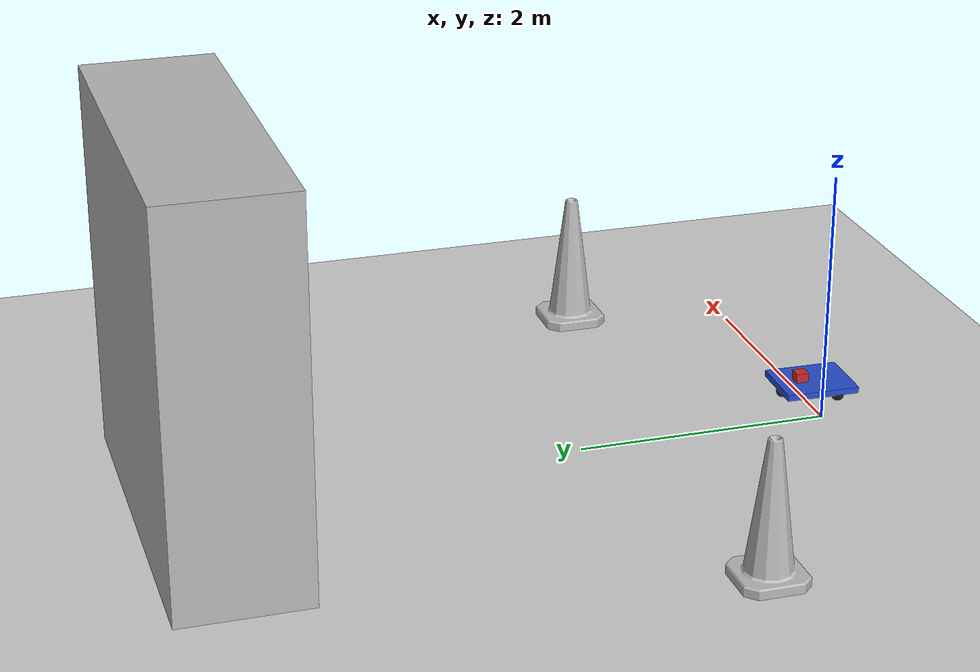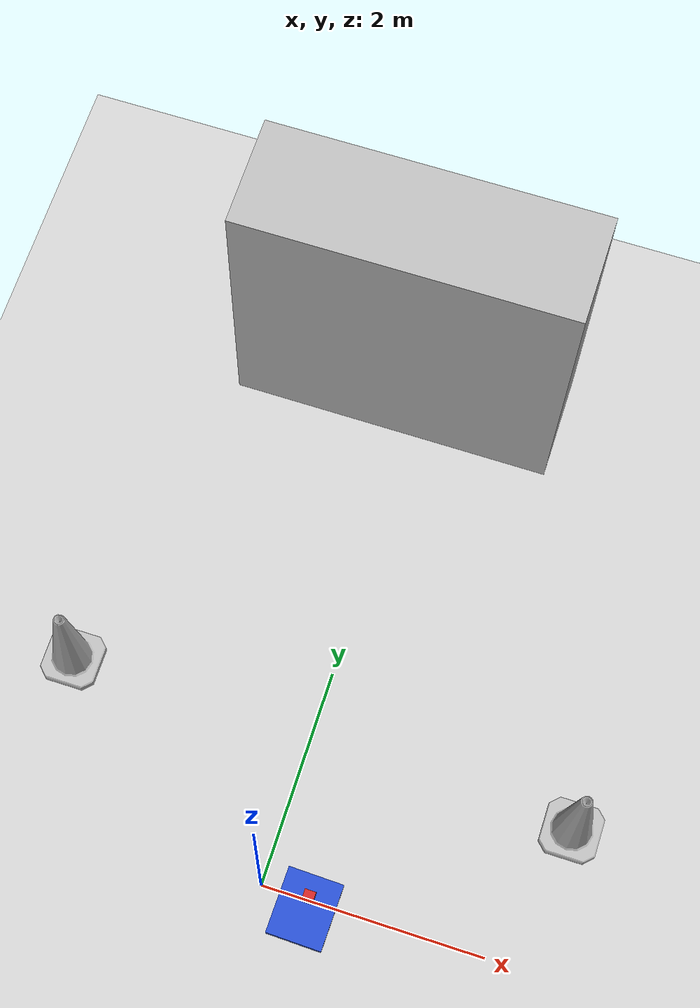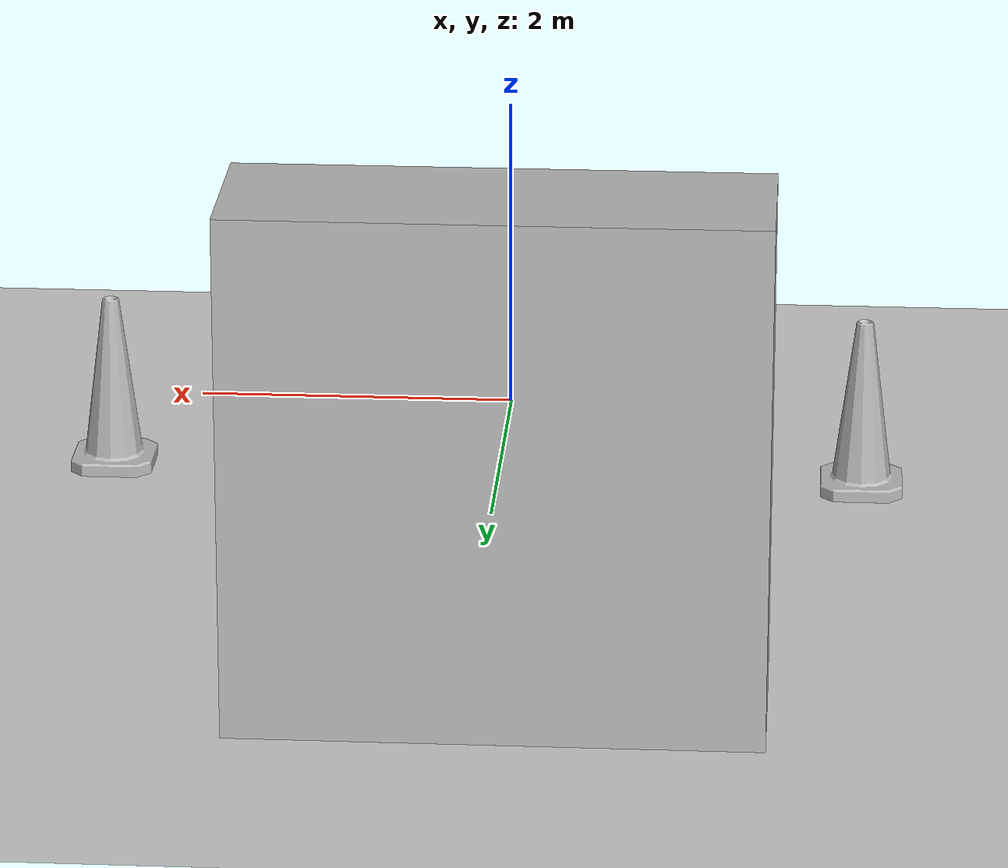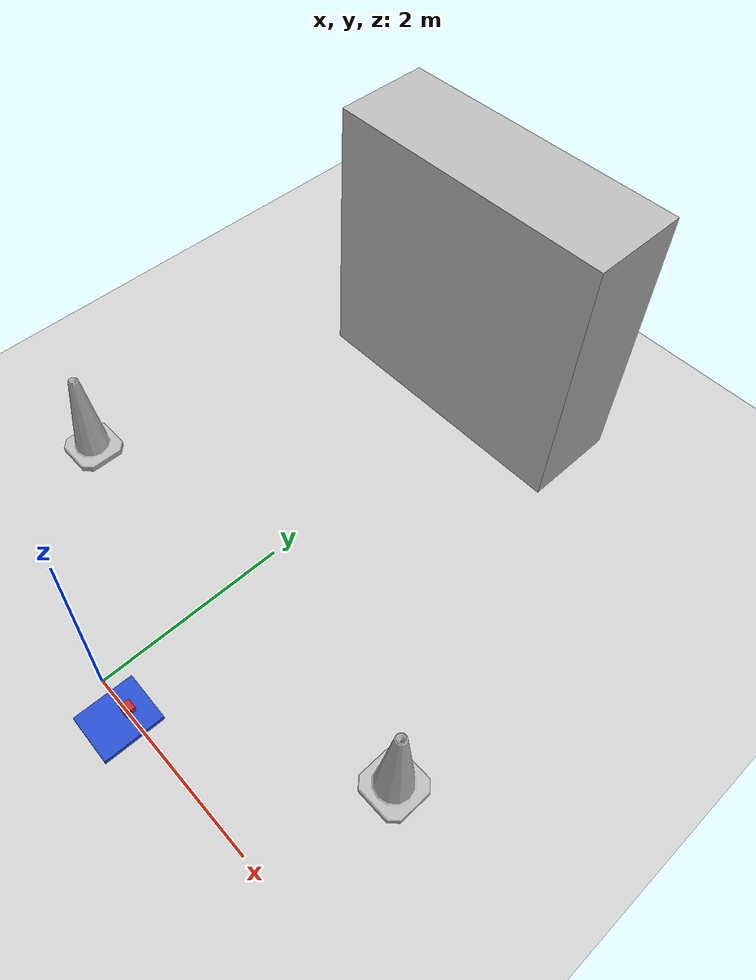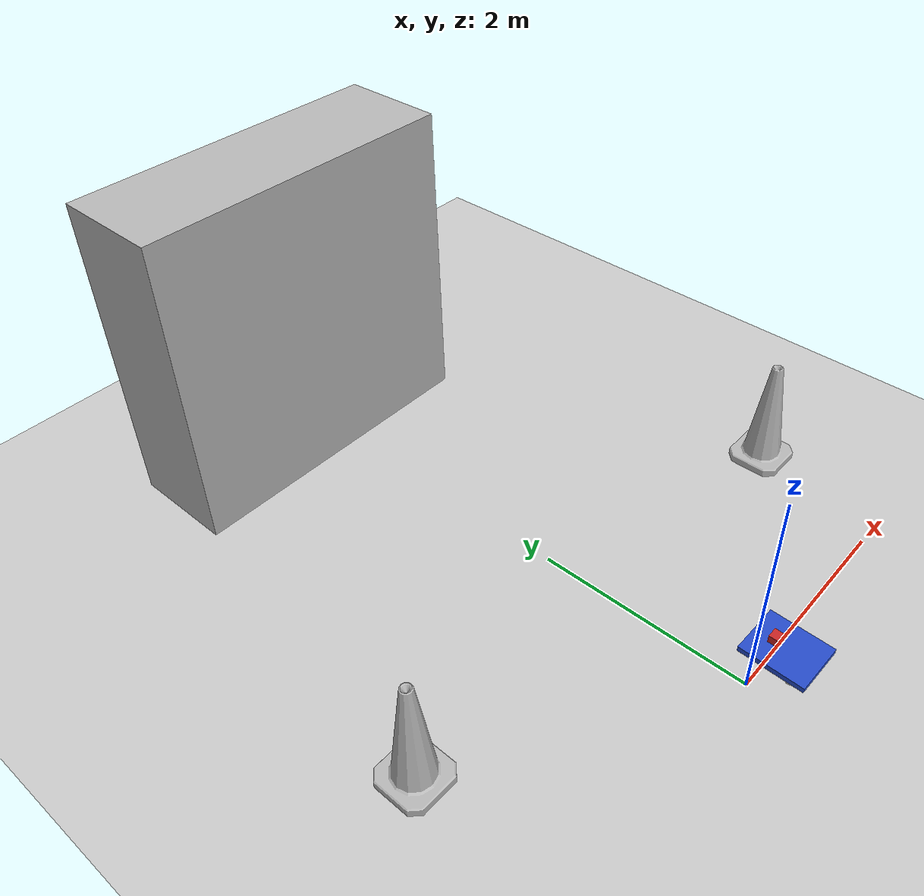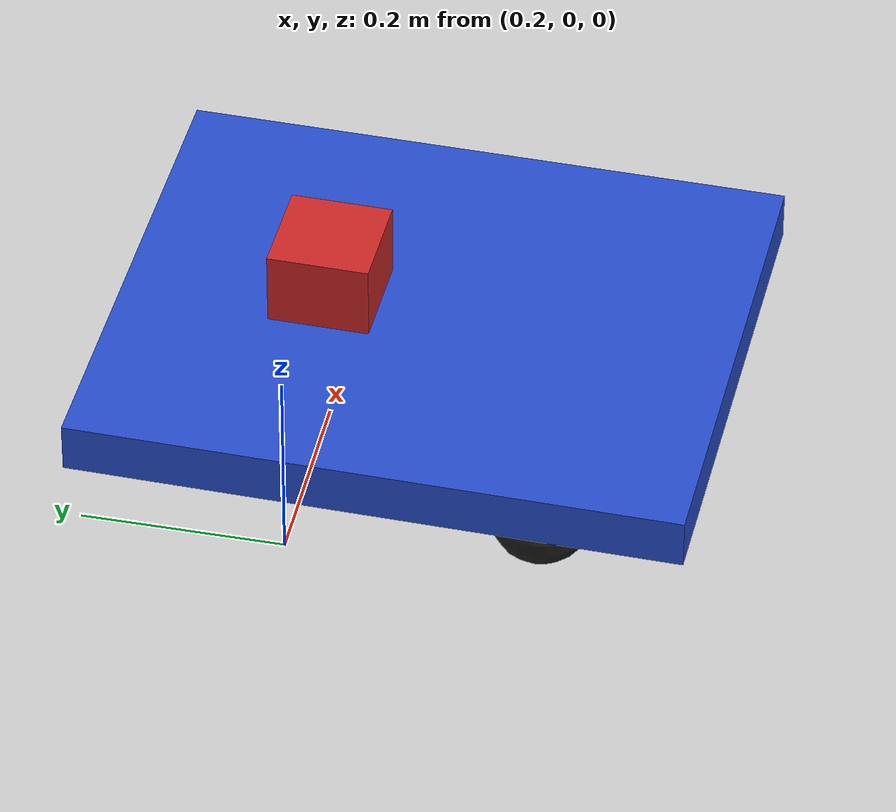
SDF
<sdf version="1.6">
 <world name="default">
  <light name="sun" type="directional">
   <pose>0 0 10 0 -0 0</pose>
   <diffuse>0.8 0.8 0.8 1</diffuse>
   <specular>0.2 0.2 0.2 1</specular>
   <attenuation>
    <range>1000</range>
    <constant>0.9</constant>
    <linear>0.01</linear>
    <quadratic>0.001</quadratic>
   </attenuation>
   <direction>-0.5 0.1 -0.9</direction>
  </light>
  <model name="ground_plane">
   <static>1</static>
   <link name="link">
    <collision name="collision">
     <geometry><plane><normal>0 0 1</normal><size>100 100</size></plane></geometry>
     <surface><friction><ode><mu>100</mu><mu2>50</mu2></ode></friction></surface>
    </collision>
    <visual name="visual">
     <cast_shadows>0</cast_shadows>
     <geometry><plane><normal>0 0 1</normal><size>100 100</size></plane></geometry>
     <material>
      <script><uri>file://media/materials/scripts/gazebo.material</uri><name>Gazebo/Grey</name></script>
     </material>
    </visual>
   </link>
  </model>
  <gravity>0 0 -9.8</gravity>
  <magnetic_field>6e-06 2.3e-05 -4.2e-05</magnetic_field>
  <atmosphere type="adiabatic"/>
  <physics name="default_physics" default="0" type="ode">
   <max_step_size>0.001</max_step_size>
   <real_time_factor>1</real_time_factor>
   <real_time_update_rate>1000</real_time_update_rate>
  </physics>
  <scene><ambient>0.4 0.4 0.4 1</ambient><background>0.7 0.7 0.7 1</background><shadows>1</shadows></scene>
  <audio><device>default</device></audio>
  <spherical_coordinates>
   <surface_model>EARTH_WGS84</surface_model>
   <latitude_deg>0</latitude_deg>
   <longitude_deg>0</longitude_deg>
   <elevation>0</elevation>
   <heading_deg>0</heading_deg>
  </spherical_coordinates>
  <model name="mobile_robot">
   <link name="base_link">
    <inertial>
     <mass>1</mass>
     <inertia><ixx>0.083</ixx><ixy>0</ixy><ixz>0</ixz><iyy>0.083</iyy><iyz>0</iyz><izz>0.083</izz></inertia>
    </inertial>
    <collision name="base_link_collision"><geometry><box><size>0.6 0.5 0.05</size></box></geometry></collision>
    <collision name="base_link_fixed_joint_lump__ultrasonic_sensor_link_collision_1">
     <pose>0.1 0 0.05 0 -0 0</pose>
     <geometry><box><size>0.1 0.1 0.1</size></box></geometry>
    </collision>
    <visual name="base_link_visual">
     <geometry><box><size>0.6 0.5 0.05</size></box></geometry>
     <material>
      <script><name>Gazebo/Blue</name><uri>file://media/materials/scripts/gazebo.material</uri></script>
     </material>
    </visual>
    <visual name="base_link_fixed_joint_lump__ultrasonic_sensor_link_visual_1">
     <pose>0.1 0 0.05 0 -0 0</pose>
     <geometry><box><size>0.1 0.1 0.1</size></box></geometry>
     <material>
      <script><name>Gazebo/Red</name><uri>file://media/materials/scripts/gazebo.material</uri></script>
     </material>
    </visual>
   </link>
   <link name="front_wheel_link">
    <pose>0.15 0 0 0 -0 0</pose>
    <inertial>
     <mass>0.01</mass>
     <inertia><ixx>0.1</ixx><ixy>0</ixy><ixz>0</ixz><iyy>0.1</iyy><iyz>0</iyz><izz>0.1</izz></inertia>
    </inertial>
    <collision name="front_wheel_link_collision">
     <pose>0.1 0 -0.05 0 -0 0</pose>
     <geometry><sphere><radius>0.05</radius></sphere></geometry>
    </collision>
    <visual name="front_wheel_link_visual">
     <pose>0.1 0 -0.05 0 -0 0</pose>
     <geometry><sphere><radius>0.05</radius></sphere></geometry>
     <material>
      <script><name>Gazebo/Black</name><uri>file://media/materials/scripts/gazebo.material</uri></script>
     </material>
    </visual>
   </link>
   <joint name="front_wheel_joint" type="revolute">
    <child>front_wheel_link</child>
    <parent>base_link</parent>
    <axis>
     <xyz>0 0 1</xyz>
     <limit><lower>-1e+16</lower><upper>1e+16</upper></limit>
     <dynamics><spring_reference>0</spring_reference><spring_stiffness>0</spring_stiffness></dynamics>
     <use_parent_model_frame>1</use_parent_model_frame>
    </axis>
   </joint>
   <link name="left_wheel_link">
    <pose>-0.15 -0.18 0 0 -0 0</pose>
    <inertial>
     <mass>0.1</mass>
     <inertia><ixx>0.1</ixx><ixy>0</ixy><ixz>0</ixz><iyy>0.1</iyy><iyz>0</iyz><izz>0.1</izz></inertia>
    </inertial>
    <collision name="left_wheel_link_collision">
     <pose>0 0 -0.05 0 -0 0</pose>
     <geometry><sphere><radius>0.05</radius></sphere></geometry>
    </collision>
    <visual name="left_wheel_link_visual">
     <pose>0 0 -0.05 0 -0 0</pose>
     <geometry><sphere><radius>0.05</radius></sphere></geometry>
     <material>
      <script><name>Gazebo/Black</name><uri>file://media/materials/scripts/gazebo.material</uri></script>
     </material>
    </visual>
   </link>
   <joint name="left_wheel_joint" type="revolute">
    <child>left_wheel_link</child>
    <parent>base_link</parent>
    <axis>
     <xyz>0 0 1</xyz>
     <limit><lower>-1e+16</lower><upper>1e+16</upper></limit>
     <dynamics><spring_reference>0</spring_reference><spring_stiffness>0</spring_stiffness></dynamics>
     <use_parent_model_frame>1</use_parent_model_frame>
    </axis>
   </joint>
   <link name="right_wheel_link">
    <pose>-0.15 0.18 0 0 -0 0</pose>
    <inertial>
     <mass>0.1</mass>
     <inertia><ixx>0.1</ixx><ixy>0</ixy><ixz>0</ixz><iyy>0.1</iyy><iyz>0</iyz><izz>0.1</izz></inertia>
    </inertial>
    <collision name="right_wheel_link_collision">
     <pose>0 0 -0.05 0 -0 0</pose>
     <geometry><sphere><radius>0.05</radius></sphere></geometry>
    </collision>
    <visual name="right_wheel_link_visual">
     <pose>0 0 -0.05 0 -0 0</pose>
     <geometry><sphere><radius>0.05</radius></sphere></geometry>
     <material>
      <script><name>Gazebo/Black</name><uri>file://media/materials/scripts/gazebo.material</uri></script>
     </material>
    </visual>
   </link>
   <joint name="right_wheel_joint" type="revolute">
    <child>right_wheel_link</child>
    <parent>base_link</parent>
    <axis>
     <xyz>0 0 1</xyz>
     <limit><lower>-1e+16</lower><upper>1e+16</upper></limit>
     <dynamics><spring_reference>0</spring_reference><spring_stiffness>0</spring_stiffness></dynamics>
     <use_parent_model_frame>1</use_parent_model_frame>
    </axis>
   </joint>
   <pose>0.425644 -0.094715 0.099993 9e-06 5.6e-05 1.54842</pose>
  </model>
  <model name="brick_box_3x1x3">
   <static>1</static>
   <link name="chassis">
    <pose>0 0 1.5 0 -0 0</pose>
    <collision name="collision"><geometry><box><size>3 1 3</size></box></geometry></collision>
    <visual name="visual">
     <geometry><mesh><uri>model://brick_box_3x1x3/meshes/simple_box.dae</uri><scale>3 1 3</scale></mesh></geometry>
     <material>
      <script>
       <uri>model://brick_box_3x1x3/materials/scripts</uri>
       <uri>model://brick_box_3x1x3/materials/textures</uri>
       <name>BrickBox/Diffuse</name>
      </script>
     </material>
    </visual>
   </link>
   <pose>-0.229218 4.9629 0 0 -0 0</pose>
  </model>
  <model name="Construction Cone">
   <link name="link">
    <collision name="collision">
     <geometry>
      <mesh><scale>10 10 10</scale><uri>model://construction_cone/meshes/construction_cone.dae</uri></mesh>
     </geometry>
    </collision>
    <visual name="visual">
     <geometry>
      <mesh><scale>10 10 10</scale><uri>model://construction_cone/meshes/construction_cone.dae</uri></mesh>
     </geometry>
    </visual>
    <inertial>
     <inertia><ixx>1</ixx><ixy>0</ixy><ixz>0</ixz><iyy>1</iyy><iyz>0</iyz><izz>1</izz></inertia>
     <mass>1</mass>
    </inertial>
   </link>
   <pose>2.40802 1.28194 -0 0 -0 0</pose>
  </model>
  <model name="Construction Cone_0">
   <link name="link">
    <collision name="collision">
     <geometry>
      <mesh><scale>10 10 10</scale><uri>model://construction_cone/meshes/construction_cone.dae</uri></mesh>
     </geometry>
    </collision>
    <visual name="visual">
     <geometry>
      <mesh><scale>10 10 10</scale><uri>model://construction_cone/meshes/construction_cone.dae</uri></mesh>
     </geometry>
    </visual>
    <inertial>
     <inertia><ixx>1</ixx><ixy>0</ixy><ixz>0</ixz><iyy>1</iyy><iyz>0</iyz><izz>1</izz></inertia>
     <mass>1</mass>
    </inertial>
   </link>
   <pose>-2.25631 1.41334 0 -1e-06 1e-06 0</pose>
  </model>
 </world>
</sdf>
